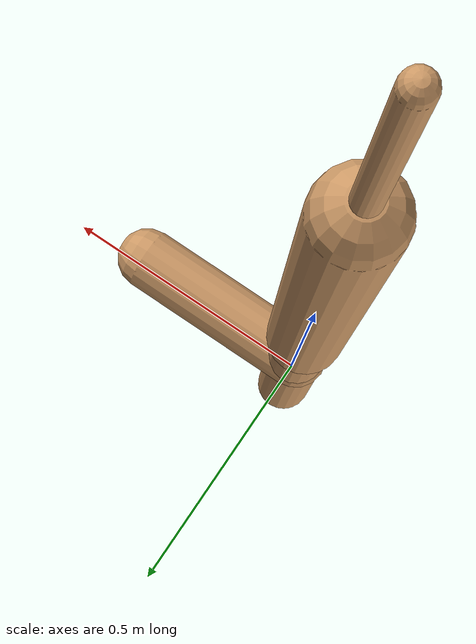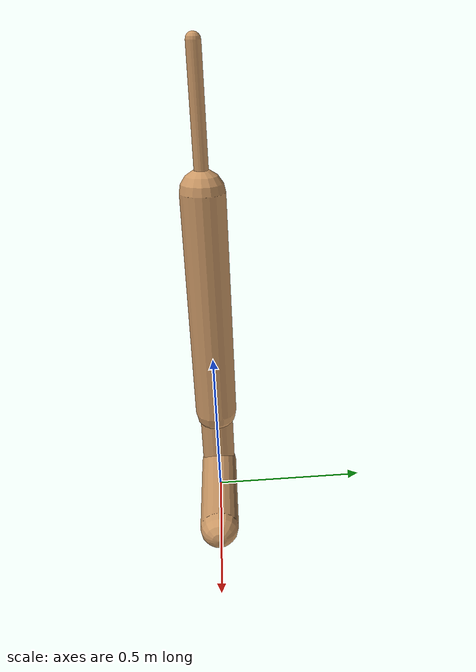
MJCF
<mujoco model="walker2d">
  <compiler angle="degree" coordinate="global" inertiafromgeom="true" />
  <default>
    <joint armature="0.01" damping=".1" limited="true" />
    <geom conaffinity="0" condim="3" contype="1" density="1000" friction="0.8 .1 .1" rgba="0.8 0.6 .4 1" />
  </default>
  <option integrator="RK4" timestep="0.002" />
  <worldbody>

    <body name="torso" pos="0 0 0.6178111270273384">
      <joint armature="0" axis="1 0 0" damping="0" limited="false" name="ignorex" pos="0 0 0" stiffness="0" type="slide" />
      <joint armature="0" axis="0 0 1" damping="0" limited="false" name="ignorez" pos="0 0 0" ref="1.25" stiffness="0" type="slide" />
      <joint armature="0" axis="0 1 0" damping="0" limited="false" name="ignorey" pos="0 0 0" stiffness="0" type="hinge" />
      <geom fromto="0 0 1.45 0 0 1.05" name="torso_geom" size="0.021076564467858147" type="capsule" />
      <body name="thigh">
        <joint axis="0 -1 0" name="thigh_joint" pos="0 0 1.05" range="-150 0" type="hinge" />
        <geom fromto="0.0 0.0 1.05 0.0 0.0 0.3073526240396817" name="thigh_geom" size="0.06745213358125206" type="capsule" />
        <body name="leg" pos="0.0 0.0 -0.29264737596031826">
          <joint axis="0 -1 0" name="leg_joint" pos="0 0 0.6" range="-150 0" type="hinge" />
          <geom fromto="0.0 0.0 0.6 0.0 0.0 -0.22516375106702022" name="leg_geom" size="0.05396170686500165" type="capsule" />
          <body name="foot" pos="0.0 0.0 -0.3251637510670202">
            <joint axis="0 -1 0" name="foot_joint" pos="0 0 0.1" range="-45 45" type="hinge" />
            <geom fromto="-0.0 0.0 0.1 0.3396622685540866 0.0 0.1" name="foot_geom" size="0.058385698912589025" type="capsule" />
          </body>
        </body>
      </body>

      <body name="thigh_left">
        <joint axis="0 -1 0" name="thigh_left_joint" pos="0 0 1.05" range="-150 0" type="hinge" />
        <geom fromto="0.0 0.0 1.05 0.0 0.0 0.3073526240396817" name="thigh_left_geom" rgba=".7 .3 .6 1" size="0.06745213358125206" type="capsule" />
        <body name="leg_left" pos="0.0 0.0 -0.29264737596031826">
          <joint axis="0 -1 0" name="leg_left_joint" pos="0 0 0.6" range="-150 0" type="hinge" />
          <geom fromto="0.0 0.0 0.6 0.0 0.0 -0.22516375106702022" name="leg_left_geom" rgba=".7 .3 .6 1" size="0.05396170686500165" type="capsule" />
          <body name="foot_left" pos="0.0 0.0 -0.3251637510670202">
            <joint axis="0 -1 0" name="foot_left_joint" pos="0 0 0.1" range="-45 45" type="hinge" />
            <geom fromto="-0.0 0.0 0.1 0.3396622685540866 0.0 0.1" name="foot_left_geom" rgba=".7 .3 .6 1" size="0.058385698912589025" type="capsule" />
          </body>
        </body>
      </body>
    </body>
  </worldbody>
  <actuator>

    <motor ctrllimited="true" ctrlrange="-1.0 1.0" gear="100" joint="thigh_joint" />
    <motor ctrllimited="true" ctrlrange="-1.0 1.0" gear="100" joint="leg_joint" />
    <motor ctrllimited="true" ctrlrange="-1.0 1.0" gear="100" joint="foot_joint" />
    <motor ctrllimited="true" ctrlrange="-1.0 1.0" gear="100" joint="thigh_left_joint" />
    <motor ctrllimited="true" ctrlrange="-1.0 1.0" gear="100" joint="leg_left_joint" />
    <motor ctrllimited="true" ctrlrange="-1.0 1.0" gear="100" joint="foot_left_joint" />

  </actuator>
</mujoco>
